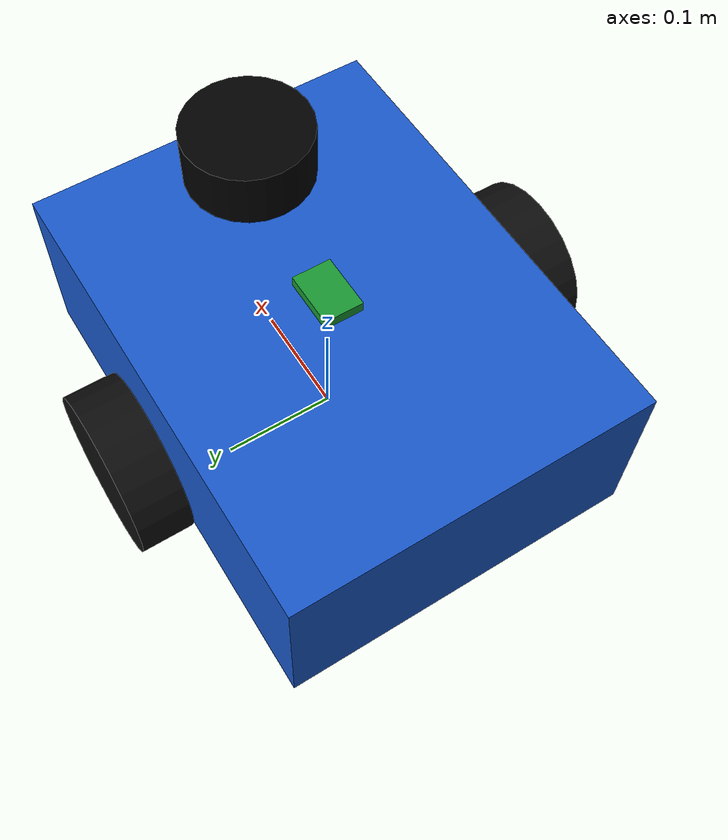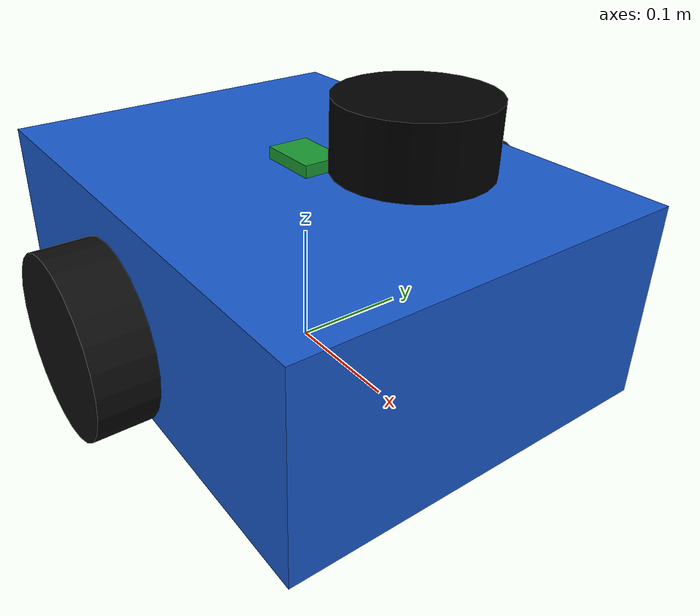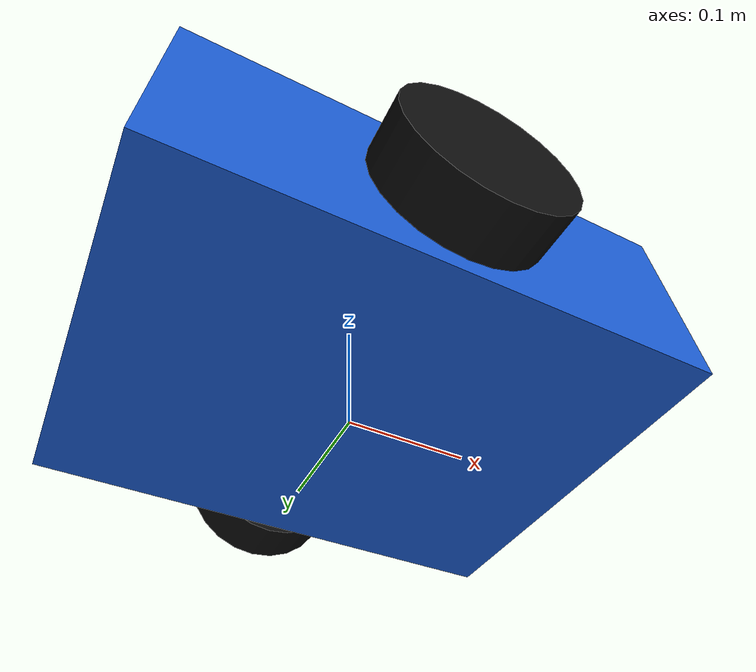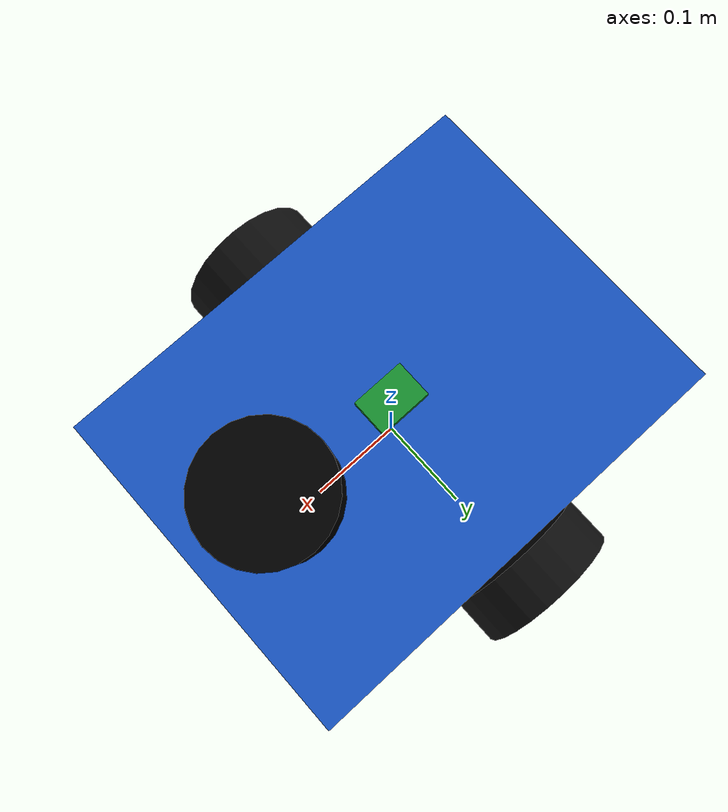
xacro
<?xml version="1.0"?>
<robot name="simple_lidar_bot" xmlns:xacro="http://www.ros.org/wiki/xacro">
  <xacro:property name="base_length" value="0.42"/>
  <xacro:property name="base_width" value="0.32"/>
  <xacro:property name="base_height" value="0.16"/>
  <xacro:property name="wheel_radius" value="0.07"/>
  <xacro:property name="wheel_width" value="0.045"/>
  <xacro:property name="wheel_y" value="0.19"/>
  <xacro:property name="wheel_x" value="0.0"/>
  <xacro:property name="wheel_z" value="0.07"/>
  <xacro:arg name="publish_odom_tf" default="true"/>

  <link name="base_link">
    <inertial>
      <origin xyz="0 0 0.08"/>
      <mass value="8.0"/>
      <inertia ixx="0.089" ixy="0.0" ixz="0.0" iyy="0.137" iyz="0.0" izz="0.173"/>
    </inertial>
    <visual>
      <origin xyz="0 0 0.08"/>
      <geometry>
        <box size="${base_length} ${base_width} ${base_height}"/>
      </geometry>
      <material name="blue">
        <color rgba="0.1 0.35 0.8 1.0"/>
      </material>
    </visual>
    <collision>
      <origin xyz="0 0 0.08"/>
      <geometry>
        <box size="${base_length} ${base_width} ${base_height}"/>
      </geometry>
    </collision>
  </link>

  <link name="left_wheel_link">
    <inertial>
      <mass value="0.5"/>
      <inertia ixx="0.00036" ixy="0.0" ixz="0.0" iyy="0.00036" iyz="0.0" izz="0.00062"/>
    </inertial>
    <visual>
      <origin rpy="1.57079632679 0 0"/>
      <geometry>
        <cylinder radius="${wheel_radius}" length="${wheel_width}"/>
      </geometry>
      <material name="dark_gray">
        <color rgba="0.05 0.05 0.05 1.0"/>
      </material>
    </visual>
    <collision>
      <origin rpy="1.57079632679 0 0"/>
      <geometry>
        <cylinder radius="${wheel_radius}" length="${wheel_width}"/>
      </geometry>
    </collision>
  </link>

  <link name="right_wheel_link">
    <inertial>
      <mass value="0.5"/>
      <inertia ixx="0.00036" ixy="0.0" ixz="0.0" iyy="0.00036" iyz="0.0" izz="0.00062"/>
    </inertial>
    <visual>
      <origin rpy="1.57079632679 0 0"/>
      <geometry>
        <cylinder radius="${wheel_radius}" length="${wheel_width}"/>
      </geometry>
      <material name="dark_gray"/>
    </visual>
    <collision>
      <origin rpy="1.57079632679 0 0"/>
      <geometry>
        <cylinder radius="${wheel_radius}" length="${wheel_width}"/>
      </geometry>
    </collision>
  </link>

  <link name="caster_link">
    <inertial>
      <mass value="0.1"/>
      <inertia ixx="0.00002" ixy="0.0" ixz="0.0" iyy="0.00002" iyz="0.0" izz="0.00002"/>
    </inertial>
    <visual>
      <geometry>
        <sphere radius="0.035"/>
      </geometry>
      <material name="light_gray">
        <color rgba="0.65 0.65 0.65 1.0"/>
      </material>
    </visual>
    <collision>
      <geometry>
        <sphere radius="0.035"/>
      </geometry>
    </collision>
  </link>

  <link name="laser">
    <inertial>
      <mass value="0.15"/>
      <inertia ixx="0.00012" ixy="0.0" ixz="0.0" iyy="0.00012" iyz="0.0" izz="0.00012"/>
    </inertial>
    <visual>
      <geometry>
        <cylinder radius="0.055" length="0.05"/>
      </geometry>
      <material name="black">
        <color rgba="0.0 0.0 0.0 1.0"/>
      </material>
    </visual>
    <collision>
      <geometry>
        <cylinder radius="0.055" length="0.05"/>
      </geometry>
    </collision>
  </link>

  <link name="imu_link">
    <inertial>
      <mass value="0.05"/>
      <inertia ixx="0.00001" ixy="0.0" ixz="0.0" iyy="0.00001" iyz="0.0" izz="0.00001"/>
    </inertial>
    <visual>
      <geometry>
        <box size="0.05 0.035 0.02"/>
      </geometry>
      <material name="green">
        <color rgba="0.1 0.6 0.2 1.0"/>
      </material>
    </visual>
    <collision>
      <geometry>
        <box size="0.05 0.035 0.02"/>
      </geometry>
    </collision>
  </link>

  <joint name="left_wheel_joint" type="continuous">
    <parent link="base_link"/>
    <child link="left_wheel_link"/>
    <origin xyz="${wheel_x} ${wheel_y} ${wheel_z}"/>
    <axis xyz="0 1 0"/>
  </joint>

  <joint name="right_wheel_joint" type="continuous">
    <parent link="base_link"/>
    <child link="right_wheel_link"/>
    <origin xyz="${wheel_x} -${wheel_y} ${wheel_z}"/>
    <axis xyz="0 1 0"/>
  </joint>

  <joint name="caster_joint" type="fixed">
    <parent link="base_link"/>
    <child link="caster_link"/>
    <origin xyz="-0.16 0 0.035"/>
  </joint>

  <joint name="laser_joint" type="fixed">
    <parent link="base_link"/>
    <child link="laser"/>
    <origin xyz="0.12 0 0.22"/>
  </joint>

  <joint name="imu_joint" type="fixed">
    <parent link="base_link"/>
    <child link="imu_link"/>
    <origin xyz="0 0 0.16"/>
  </joint>

  <gazebo reference="base_link">
    <material>Gazebo/Blue</material>
  </gazebo>

  <gazebo reference="left_wheel_link">
    <material>Gazebo/Black</material>
    <mu1>1.0</mu1>
    <mu2>1.0</mu2>
  </gazebo>

  <gazebo reference="right_wheel_link">
    <material>Gazebo/Black</material>
    <mu1>1.0</mu1>
    <mu2>1.0</mu2>
  </gazebo>

  <gazebo reference="laser">
    <sensor name="scan_raw_sensor" type="ray">
      <always_on>true</always_on>
      <visualize>false</visualize>
      <update_rate>10.0</update_rate>
      <ray>
        <scan>
          <horizontal>
            <samples>360</samples>
            <resolution>1</resolution>
            <min_angle>-3.14159265359</min_angle>
            <max_angle>3.14159265359</max_angle>
          </horizontal>
        </scan>
        <range>
          <min>0.12</min>
          <max>8.0</max>
          <resolution>0.01</resolution>
        </range>
        <noise>
          <type>gaussian</type>
          <mean>0.0</mean>
          <stddev>0.0</stddev>
        </noise>
      </ray>
      <plugin name="scan_raw_plugin" filename="libgazebo_ros_ray_sensor.so">
        <ros>
          <remapping>~/out:=scan_raw</remapping>
        </ros>
        <output_type>sensor_msgs/LaserScan</output_type>
        <frame_name>laser</frame_name>
      </plugin>
    </sensor>
  </gazebo>

  <gazebo reference="imu_link">
    <sensor name="imu_sensor" type="imu">
      <always_on>true</always_on>
      <visualize>false</visualize>
      <update_rate>50.0</update_rate>
      <plugin name="imu_plugin" filename="libgazebo_ros_imu_sensor.so">
        <ros>
          <remapping>~/out:=imu/data</remapping>
        </ros>
        <frame_name>imu_link</frame_name>
        <initial_orientation_as_reference>false</initial_orientation_as_reference>
      </plugin>
    </sensor>
  </gazebo>

  <gazebo>
    <plugin name="diff_drive_plugin" filename="libgazebo_ros_diff_drive.so">
      <ros>
        <namespace>/</namespace>
      </ros>
      <update_rate>30.0</update_rate>
      <left_joint>left_wheel_joint</left_joint>
      <right_joint>right_wheel_joint</right_joint>
      <wheel_separation>0.38</wheel_separation>
      <wheel_diameter>0.14</wheel_diameter>
      <max_wheel_torque>20.0</max_wheel_torque>
      <max_wheel_acceleration>2.0</max_wheel_acceleration>
      <command_topic>cmd_vel</command_topic>
      <odometry_topic>odom</odometry_topic>
      <odometry_frame>odom</odometry_frame>
      <robot_base_frame>base_link</robot_base_frame>
      <publish_odom>true</publish_odom>
      <publish_odom_tf>$(arg publish_odom_tf)</publish_odom_tf>
      <publish_wheel_tf>false</publish_wheel_tf>
    </plugin>

    <plugin name="joint_state_plugin" filename="libgazebo_ros_joint_state_publisher.so">
      <update_rate>30.0</update_rate>
      <joint_name>left_wheel_joint</joint_name>
      <joint_name>right_wheel_joint</joint_name>
    </plugin>

    <plugin name="ground_truth_p3d" filename="libgazebo_ros_p3d.so">
      <ros>
        <namespace>/ground_truth</namespace>
        <remapping>odom:=odom</remapping>
      </ros>
      <body_name>base_link</body_name>
      <frame_name>odom</frame_name>
      <update_rate>30.0</update_rate>
    </plugin>
  </gazebo>
</robot>
